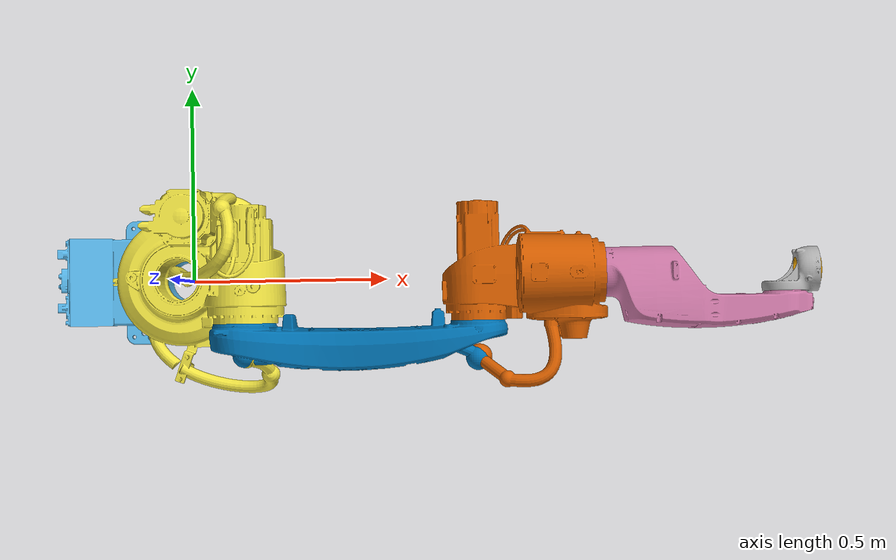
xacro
<?xml version="1.0" encoding="UTF-8"?>
<robot xmlns:xacro="http://ros.org/wiki/xacro" name="kr12_r1450_2_e">
  <!-- Import macro files  -->
  <xacro:include filename="$(find kuka_cybertech_support)/urdf/kr12_r1450_2_e_macro.xacro"/>
  <xacro:include filename="$(find kuka_cybertech_support)/urdf/kr_cybertech_ros2_control_macro.xacro"/>
  <!-- Read additional arguments  -->
  <xacro:arg name="driver_version" default="eki_rsi"/>
  <xacro:arg name="mode" default="hardware"/>
  <xacro:arg name="use_gpio" default="false"/>
  <xacro:arg name="roundtrip_time" default="0"/>
  <xacro:arg name="client_ip" default="0.0.0.0"/>
  <xacro:arg name="client_port" default="59152"/>
  <xacro:arg name="controller_ip" default="0.0.0.0"/>
  <xacro:arg name="verify_robot_model" default="true"/>
  <xacro:arg name="prefix" default=""/>
  <xacro:arg name="x" default="0"/>
  <xacro:arg name="y" default="0"/>
  <xacro:arg name="z" default="0"/>
  <xacro:arg name="roll" default="0"/>
  <xacro:arg name="pitch" default="0"/>
  <xacro:arg name="yaw" default="0"/>
  <xacro:kuka_cybertech_ros2_control name="$(arg prefix)kr12_r1450_2_e" driver_version="$(arg driver_version)" client_ip="$(arg client_ip)" client_port="$(arg client_port)" controller_ip="$(arg controller_ip)" prefix="$(arg prefix)" mode="$(arg mode)" use_gpio="$(arg use_gpio)" roundtrip_time="$(arg roundtrip_time)" verify_robot_model="$(arg verify_robot_model)"/>
  <xacro:kuka_kr12_r1450_2_e_robot prefix="$(arg prefix)" package_name="kuka_cybertech_support">
    <origin xyz="$(arg x) $(arg y) $(arg z)" rpy="$(arg roll) $(arg pitch) $(arg yaw)"/>
  </xacro:kuka_kr12_r1450_2_e_robot>
</robot>

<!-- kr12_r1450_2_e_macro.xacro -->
<robot xmlns:xacro="http://www.ros.org/wiki/xacro" name="kr12_r1450_2_e">
  <xacro:macro name="kuka_kr12_r1450_2_e_robot" params="prefix package_name *origin">
    <link name="${prefix}base"/>
    <link name="${prefix}base_link">
      <collision>
        <geometry>
          <mesh filename="package://${package_name}/meshes/kr12_r1450_2_e/collision/base_link.stl"/>
        </geometry>
        <origin rpy="0.0 -0.0 0.0" xyz="0.0 0.0 0.0"/>
      </collision>
      <inertial>
        <inertia ixx="0.4960299910274121" ixy="0.0" ixz="0.0" iyy="0.6048157081105422" iyz="0.0" izz="0.6360659708620461"/>
        <mass value="3.727E1"/>
        <origin rpy="-1.55312900753334 -1.5297115505069407 -3.1392650967640674" xyz="-0.007639999999999999 -3.0E-5 0.17743"/>
      </inertial>
      <visual>
        <geometry>
          <mesh filename="package://${package_name}/meshes/kr12_r1450_2_e/visual/base_link.dae"/>
        </geometry>
        <origin rpy="0.0 -0.0 0.0" xyz="0.0 0.0 0.0"/>
      </visual>
    </link>
    <link name="${prefix}flange"/>
    <link name="${prefix}link_1">
      <collision>
        <geometry>
          <mesh filename="package://${package_name}/meshes/kr12_r1450_2_e/collision/link_1.stl"/>
        </geometry>
        <origin rpy="-3.141592653589793 0.0 -0.0" xyz="0.0 -1.7512449227807152e-17 0.14300000000000002"/>
      </collision>
      <inertial>
        <inertia ixx="1.1070389663856106" ixy="0.0" ixz="0.0" iyy="0.9542136834731694" iyz="0.0" izz="1.3157517337003277"/>
        <mass value="6.844E1"/>
        <origin rpy="0.46884540930966767 0.33788002249960064 -0.6970875425285978" xyz="0.07197355961426066 -0.04009006151373466 -0.1686780800701344"/>
      </inertial>
      <visual>
        <geometry>
          <mesh filename="package://${package_name}/meshes/kr12_r1450_2_e/visual/link_1.dae"/>
        </geometry>
        <origin rpy="-3.141592653589793 0.0 -0.0" xyz="0.0 -1.7512449227807152e-17 0.14300000000000002"/>
      </visual>
    </link>
    <link name="${prefix}link_2">
      <collision>
        <geometry>
          <mesh filename="package://${package_name}/meshes/kr12_r1450_2_e/collision/link_2.stl"/>
        </geometry>
        <origin rpy="1.5707963267948968 -0.0 1.5707963267948966" xyz="-0.374 -0.16499999999999998 0.08340000000000004"/>
      </collision>
      <inertial>
        <inertia ixx="1.6356924888576405" ixy="0.0" ixz="0.0" iyy="0.11407398602997587" iyz="0.0" izz="1.6483548252231541"/>
        <mass value="2.8532E1"/>
        <origin rpy="2.4840939896758982 -1.5635756866435466 2.2337329096047576" xyz="0.24280395864292725 3.87396607318099E-4 -0.0409828683583345"/>
      </inertial>
      <visual>
        <geometry>
          <mesh filename="package://${package_name}/meshes/kr12_r1450_2_e/visual/link_2.dae"/>
        </geometry>
        <origin rpy="1.5707963267948968 -0.0 1.5707963267948966" xyz="-0.374 -0.16499999999999998 0.08340000000000004"/>
      </visual>
    </link>
    <link name="${prefix}link_3">
      <collision>
        <geometry>
          <mesh filename="package://${package_name}/meshes/kr12_r1450_2_e/collision/link_3.stl"/>
        </geometry>
        <origin rpy="1.5707963267948968 -0.0 -0.0" xyz="-0.16500000000000004 0.934 0.07544500000000004"/>
      </collision>
      <inertial>
        <inertia ixx="0.3847571563931332" ixy="0.0" ixz="0.0" iyy="0.28985566710648236" iyz="0.0" izz="0.5180855326212195"/>
        <mass value="2.3910000000000004E1"/>
        <origin rpy="0.3341772117494727 -0.23553563739349717 1.208184813745186" xyz="0.1235252208281054 -0.09395377206189878 0.06767732747804266"/>
      </inertial>
      <visual>
        <geometry>
          <mesh filename="package://${package_name}/meshes/kr12_r1450_2_e/visual/link_3.dae"/>
        </geometry>
        <origin rpy="1.5707963267948968 -0.0 -0.0" xyz="-0.16500000000000004 0.934 0.07544500000000004"/>
      </visual>
    </link>
    <link name="${prefix}link_4">
      <collision>
        <geometry>
          <mesh filename="package://${package_name}/meshes/kr12_r1450_2_e/collision/link_4.stl"/>
        </geometry>
        <origin rpy="1.8369701987210297e-16 1.5707963267948966 0.0" xyz="-1.122 1.678228889588536e-17 0.454"/>
      </collision>
      <inertial>
        <inertia ixx="0.0266324235481152" ixy="0.0" ixz="0.0" iyy="0.12335500610038092" iyz="0.0" izz="0.1278161448559377"/>
        <mass value="9.9E0"/>
        <origin rpy="-3.1293274108527234 -1.4325794220019514 -1.5644645134037816" xyz="4.1292929292929305E-4 -0.07045919595959596 -0.21818545454545454"/>
      </inertial>
      <visual>
        <geometry>
          <mesh filename="package://${package_name}/meshes/kr12_r1450_2_e/visual/link_4.dae"/>
        </geometry>
        <origin rpy="1.8369701987210297e-16 1.5707963267948966 0.0" xyz="-1.122 1.678228889588536e-17 0.454"/>
      </visual>
    </link>
    <link name="${prefix}link_5">
      <collision>
        <geometry>
          <mesh filename="package://${package_name}/meshes/kr12_r1450_2_e/collision/link_5.stl"/>
        </geometry>
        <origin rpy="1.5707963267948968 -3.749399456654644e-33 -6.123233995736766e-17" xyz="-0.8651999999999999 1.122 0.0645"/>
      </collision>
      <inertial>
        <inertia ixx="0.0021390105045295924" ixy="0.0" ixz="0.0" iyy="0.004443322771594145" iyz="0.0" izz="0.004863426723876266"/>
        <mass value="1.94E0"/>
        <origin rpy="-0.011400445811909663 -0.9423868288967095 3.1397288077672774" xyz="0.01791 -5.0000000000000016E-5 0.02925000000000001"/>
      </inertial>
      <visual>
        <geometry>
          <mesh filename="package://${package_name}/meshes/kr12_r1450_2_e/visual/link_5.dae"/>
        </geometry>
        <origin rpy="1.5707963267948968 -3.749399456654644e-33 -6.123233995736766e-17" xyz="-0.8651999999999999 1.122 0.0645"/>
      </visual>
    </link>
    <link name="${prefix}link_6">
      <collision>
        <geometry>
          <mesh filename="package://${package_name}/meshes/kr12_r1450_2_e/collision/link_6.stl"/>
        </geometry>
        <origin rpy="1.2246467991473532e-16 1.5707963267948966 0.0" xyz="-1.1220000000000003 -5.249702461892625e-17 0.9167"/>
      </collision>
      <inertial>
        <inertia ixx="3.0104E-4" ixy="0.0" ixz="0.0" iyy="3.0185E-4" iyz="0.0" izz="4.4735E-4"/>
        <mass value="5.0E-1"/>
        <origin rpy="0.0 -0.0 0.0" xyz="0.0 -5.0E-5 -0.00862"/>
      </inertial>
      <visual>
        <geometry>
          <mesh filename="package://${package_name}/meshes/kr12_r1450_2_e/visual/link_6.dae"/>
        </geometry>
        <origin rpy="1.2246467991473532e-16 1.5707963267948966 0.0" xyz="-1.1220000000000003 -5.249702461892625e-17 0.9167"/>
      </visual>
    </link>
    <link name="${prefix}tool0"/>
    <link name="world"/>
    <joint name="${prefix}base_link-base" type="fixed">
      <child link="${prefix}base"/>
      <parent link="${prefix}base_link"/>
    </joint>
    <joint name="${prefix}joint_1" type="revolute">
      <axis xyz="0.0 0.0 1.0"/>
      <child link="${prefix}link_1"/>
      <limit effort="1.0059599999999999E3" lower="-2.967059725E0" upper="2.967059725E0" velocity="4.5378560551852569E0"/>
      <origin rpy="3.141592653589793 -0.0 0.0" xyz="0.0 0.0 0.14300000000000002"/>
      <parent link="${prefix}base_link"/>
    </joint>
    <joint name="${prefix}joint_2" type="revolute">
      <axis xyz="0.0 0.0 1.0"/>
      <child link="${prefix}link_2"/>
      <limit effort="6.7257904141950394E2" lower="-3.2288591125E0" upper="1.1344640125E0" velocity="4.1887902047863905E0"/>
      <origin rpy="1.5707963267948966 -0.0 0.0" xyz="0.165 0.0834 -0.231"/>
      <parent link="${prefix}link_1"/>
    </joint>
    <joint name="${prefix}joint_3" type="revolute">
      <axis xyz="0.0 0.0 1.0"/>
      <child link="${prefix}link_3"/>
      <limit effort="4.7729159457867991E2" lower="-2.0943951E0" upper="3.14159265E0" velocity="4.5378560551852569E0"/>
      <origin rpy="0.0 -0.0 0.0" xyz="0.56 0.0 0.007954999999999999"/>
      <parent link="${prefix}link_2"/>
    </joint>
    <joint name="${prefix}joint_4" type="revolute">
      <axis xyz="0.0 0.0 1.0"/>
      <child link="${prefix}link_4"/>
      <limit effort="5.3622065217827711E1" lower="-3.14159265E0" upper="3.14159265E0" velocity="7.5049157835756173E0"/>
      <origin rpy="1.5707963267948966 -0.0 -1.5707963267948966" xyz="0.289 -0.188 0.075445"/>
      <parent link="${prefix}link_3"/>
    </joint>
    <joint name="${prefix}joint_5" type="revolute">
      <axis xyz="0.0 0.0 1.0"/>
      <child link="${prefix}link_5"/>
      <limit effort="4.8408660825067088E1" lower="-2.44346095E0" upper="2.44346095E0" velocity="7.8539816339744828E0"/>
      <origin rpy="0.0 1.5707963267948966 1.5707963267948966" xyz="0.0 -0.0645 -0.4112"/>
      <parent link="${prefix}link_4"/>
    </joint>
    <joint name="${prefix}joint_6" type="revolute">
      <axis xyz="0.0 0.0 1.0"/>
      <child link="${prefix}link_6"/>
      <limit effort="2.7645600001532809E1" lower="-6.108652375E0" upper="6.108652375E0" velocity="1.2566370614359172E1"/>
      <origin rpy="1.5707963267948966 -0.0 -1.5707963267948966" xyz="0.051500000000000004 0.0 0.0645"/>
      <parent link="${prefix}link_5"/>
    </joint>
    <joint name="${prefix}link6-flange" type="fixed">
      <child link="${prefix}flange"/>
      <origin rpy="0.0 1.5707963267948966 0.0" xyz="0.0 0.0 -0.0285"/>
      <parent link="${prefix}link_6"/>
    </joint>
    <joint name="${prefix}link6-tool0" type="fixed">
      <child link="${prefix}tool0"/>
      <origin rpy="3.141592653589793 1.2246467991473532E-16 3.141592653589793" xyz="0.0 0.0 -0.0285"/>
      <parent link="${prefix}link_6"/>
    </joint>
    <joint name="${prefix}world-base_link" type="fixed">
      <child link="${prefix}base_link"/>
      <parent link="world"/>
      <xacro:insert_block name="origin"/>
    </joint>
  </xacro:macro>
</robot>
